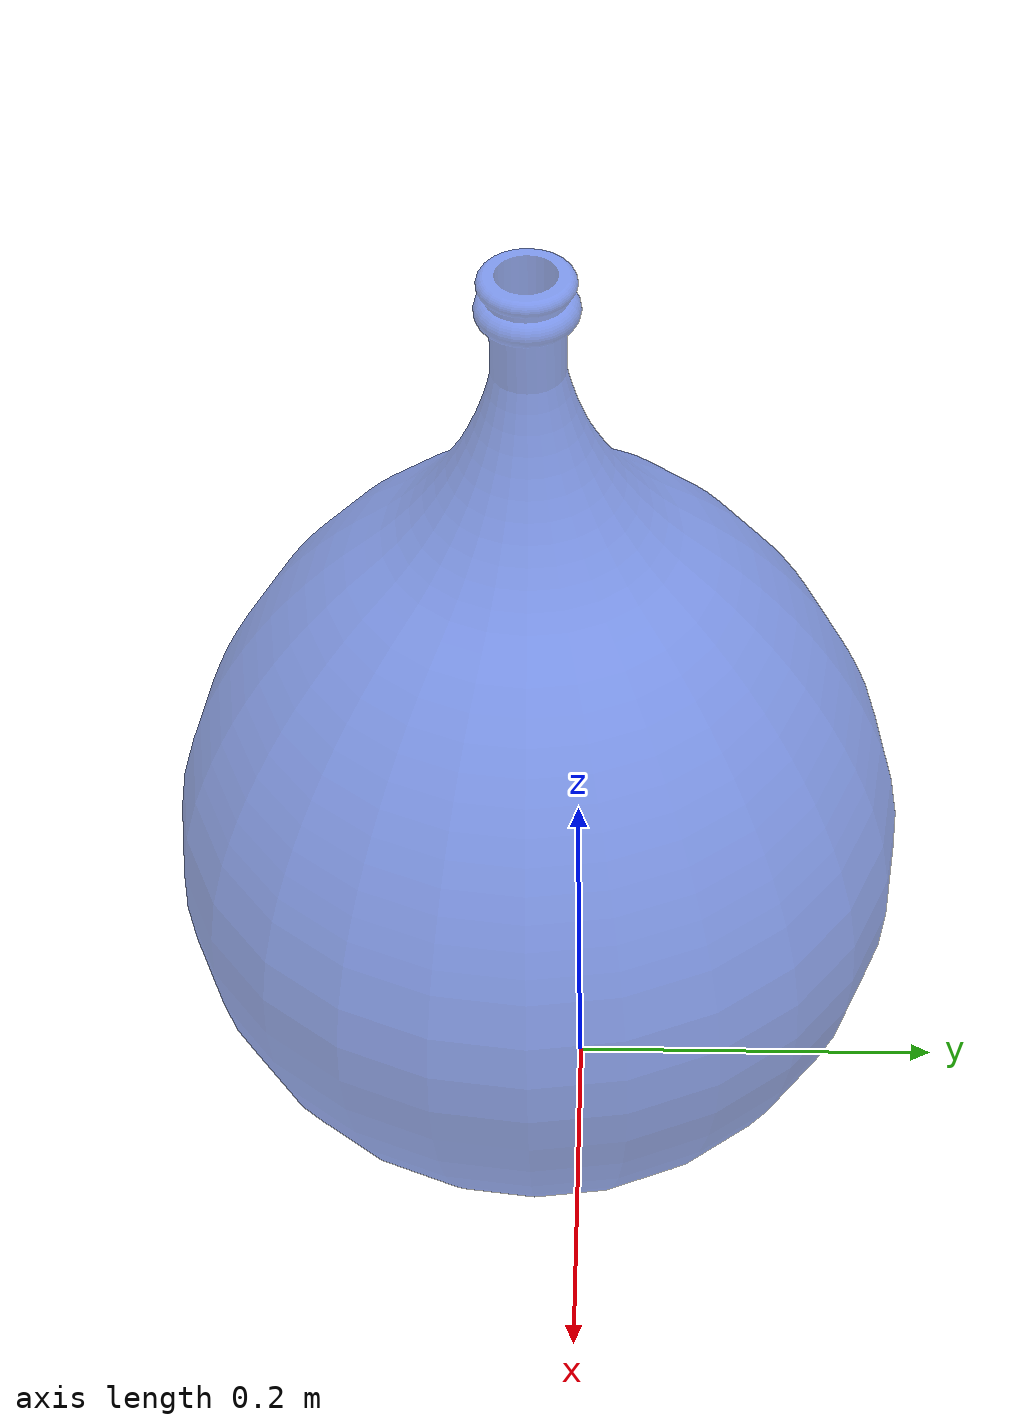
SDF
<?xml version='1.0'?>
<sdf version='1.6'>
  <model name='vase_blue'>
    <link name='link_27'>
      <pose frame=''>-0.182739 -0.209101 0 0 -0 0</pose>
       <visual name='visual'>
        <pose frame=''>0 0 0 0 -0 0</pose>
        <geometry>
          <mesh>
            <uri>model://vase_blue/meshes/vase.dae</uri>
            <scale>1 1 1</scale>
          </mesh>
        </geometry>
        <material>
          <lighting>1</lighting>
        <ambient>0.188 0.352 0.89 1</ambient>
          <diffuse>0.188 0.352 0.89 1</diffuse>
          <specular>0.01 0.01 0.01 1</specular>
          <emissive>0 0 0 1</emissive>
          <shader type='vertex'>
            <normal_map>__default__</normal_map>
          </shader>
        </material>
        <cast_shadows>1</cast_shadows>
        <transparency>0.4</transparency>
      </visual>
      <collision name='collision'>
        <laser_retro>0</laser_retro>
        <max_contacts>10</max_contacts>
        <pose frame=''>0 0 0 0 -0 0</pose>
        <geometry>
          <mesh>
            <uri>model://vase_blue/meshes/vase.dae</uri>
            <scale>1 1 1</scale>
          </mesh>
        </geometry>
       </collision>
    </link>
    <static>1</static>
    <allow_auto_disable>1</allow_auto_disable>
  </model>
</sdf>
